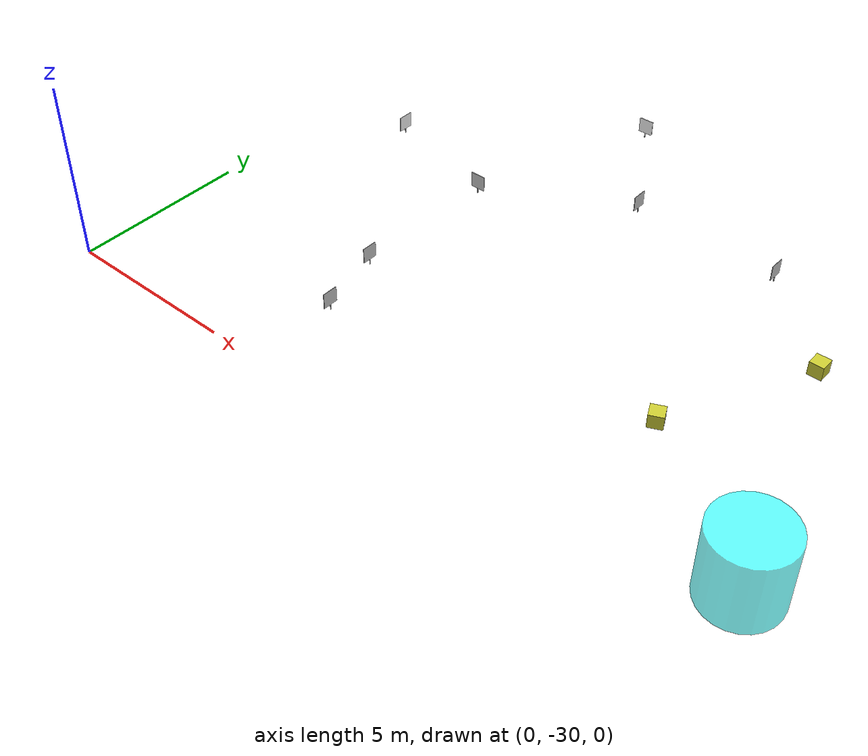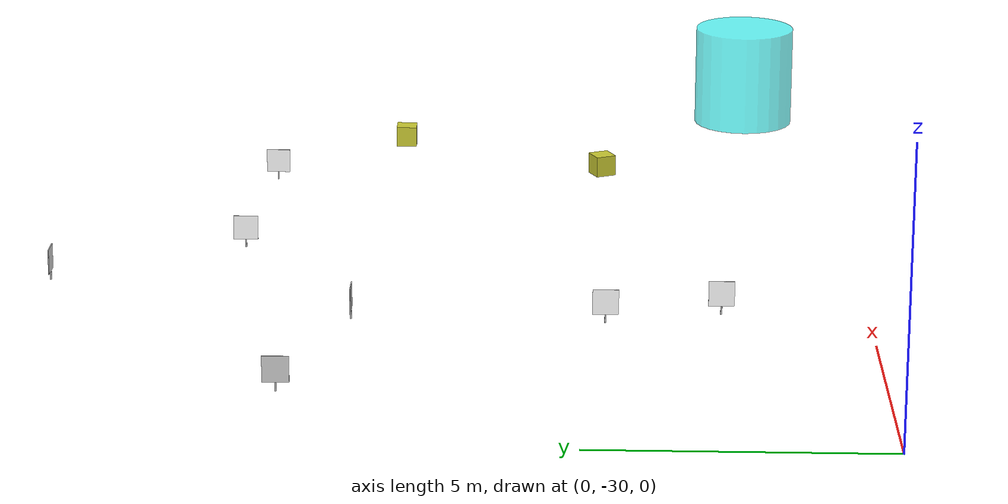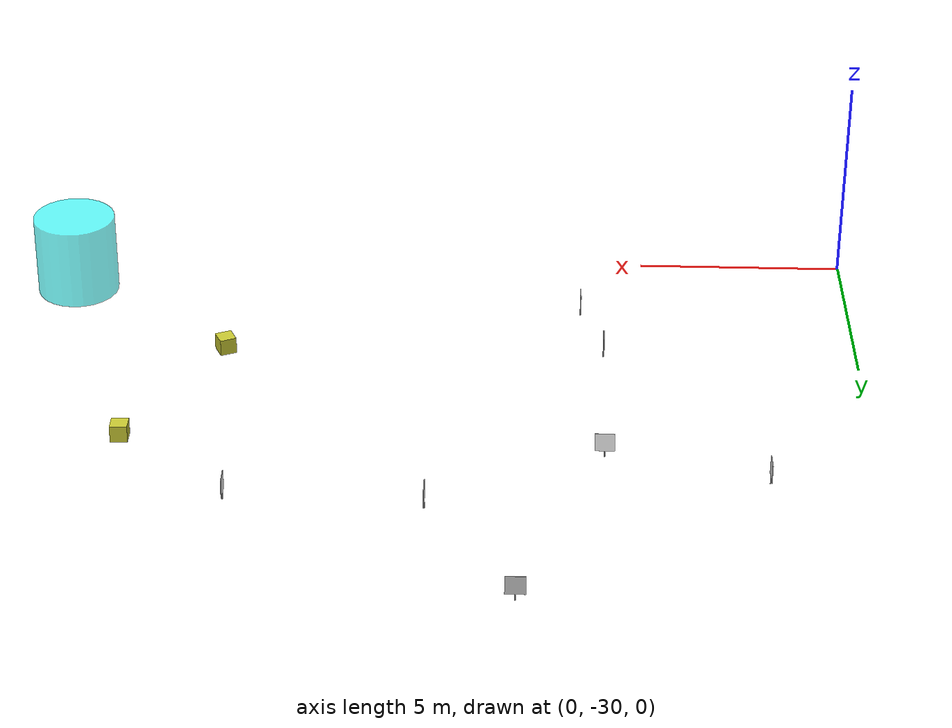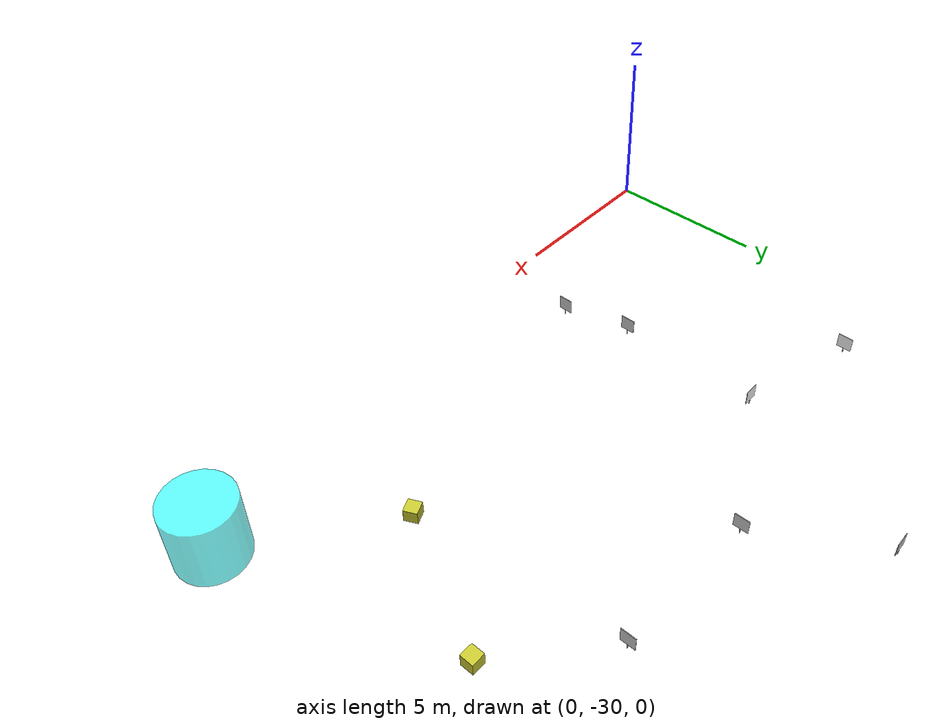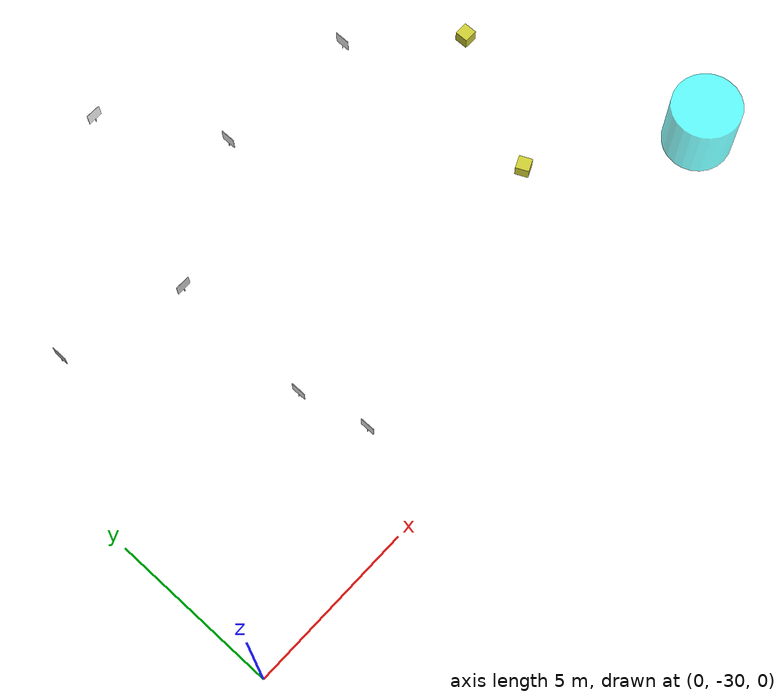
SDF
<sdf version="1.7">
 <world name="sim_world">
  <model name="aruco_3_v79">
   <static>true</static>
   <pose>17.117087575012107 -21.46088388597486 0.2 0 0 0.0</pose>
   <link name="link">
    <visual name="visual">
     <geometry><box><size>0.4 0.4 0.4</size></box></geometry>
     <material>
      <ambient>0.8 0.8 0.2 1</ambient>
      <diffuse>0.8 0.8 0.2 1</diffuse>
      <pbr>
       <metal>
        <albedo_map>/home/nemilai/ros2_ws/src/mini_r1_v1_description/worlds/generated/aruco_3.png</albedo_map>
       </metal>
      </pbr>
     </material>
    </visual>
    <collision name="collision"><geometry><box><size>0.4 0.4 0.4</size></box></geometry></collision>
   </link>
  </model>
  <model name="aruco_4_v80">
   <static>true</static>
   <pose>15.117840397118337 -25.435033826702337 0.2 0 0 0.4363323129985824</pose>
   <link name="link">
    <visual name="visual">
     <geometry><box><size>0.4 0.4 0.4</size></box></geometry>
     <material>
      <ambient>0.8 0.8 0.2 1</ambient>
      <diffuse>0.8 0.8 0.2 1</diffuse>
      <pbr>
       <metal>
        <albedo_map>/home/nemilai/ros2_ws/src/mini_r1_v1_description/worlds/generated/aruco_4.png</albedo_map>
       </metal>
      </pbr>
     </material>
    </visual>
    <collision name="collision"><geometry><box><size>0.4 0.4 0.4</size></box></geometry></collision>
   </link>
  </model>
  <model name="sign_12_rotate_180_clockwise_v85">
   <static>true</static>
   <pose>8.07224135133321 -15.52440315666892 0 0 0 4.71238898038469</pose>
   <link name="link">
    <visual name="pole">
     <pose>0 0 0.075 0 0 0</pose>
     <geometry><cylinder><radius>0.015</radius><length>0.15</length></cylinder></geometry>
     <material>
      <ambient>0.8 0.8 0.8 1</ambient>
      <diffuse>0.8 0.8 0.8 1</diffuse>
      <pbr>
       <metal>
        <albedo_map>file:///home/nemilai/ros2_ws/src/mini_r1_v1_description/worlds/wood_texture.jpg</albedo_map>
       </metal>
      </pbr>
     </material>
    </visual>
    <collision name="pole_col">
     <pose>0 0 0.075 0 0 0</pose>
     <geometry><cylinder><radius>0.015</radius><length>0.15</length></cylinder></geometry>
    </collision>
    <visual name="panel">
     <pose>0 0 0.375 0 0 0</pose>
     <geometry><box><size>0.015 0.45 0.45</size></box></geometry>
     <material>
      <ambient>0.8 0.8 0.8 1</ambient>
      <diffuse>0.8 0.8 0.8 1</diffuse>
      <pbr>
       <metal>
        <albedo_map>file:///home/nemilai/ros2_ws/src/mini_r1_v1_description/worlds/wood_texture.jpg</albedo_map>
       </metal>
      </pbr>
     </material>
    </visual>
    <visual name="sign_front">
     <pose>0.0085 0 0.375 0 0 0</pose>
     <geometry><box><size>0.001 0.45 0.45</size></box></geometry>
     <material>
      <ambient>1 1 1 1</ambient>
      <diffuse>1 1 1 1</diffuse>
      <pbr>
       <metal>
        <albedo_map>file:///home/nemilai/ros2_ws/src/mini_r1_v1_description/worlds/generated/sign_12_rotate_180_clockwise.png</albedo_map>
       </metal>
      </pbr>
     </material>
    </visual>
    <collision name="panel_col">
     <pose>0 0 0.375 0 0 0</pose>
     <geometry><box><size>0.015 0.45 0.45</size></box></geometry>
    </collision>
   </link>
  </model>
  <model name="sign_6_right_v88">
   <static>true</static>
   <pose>6.1146526232194525 -21.04196971312087 0 0 0 1.5707963267948966</pose>
   <link name="link">
    <visual name="pole">
     <pose>0 0 0.075 0 0 0</pose>
     <geometry><cylinder><radius>0.015</radius><length>0.15</length></cylinder></geometry>
     <material>
      <ambient>0.8 0.8 0.8 1</ambient>
      <diffuse>0.8 0.8 0.8 1</diffuse>
      <pbr>
       <metal>
        <albedo_map>file:///home/nemilai/ros2_ws/src/mini_r1_v1_description/worlds/wood_texture.jpg</albedo_map>
       </metal>
      </pbr>
     </material>
    </visual>
    <collision name="pole_col">
     <pose>0 0 0.075 0 0 0</pose>
     <geometry><cylinder><radius>0.015</radius><length>0.15</length></cylinder></geometry>
    </collision>
    <visual name="panel">
     <pose>0 0 0.375 0 0 0</pose>
     <geometry><box><size>0.015 0.45 0.45</size></box></geometry>
     <material>
      <ambient>0.8 0.8 0.8 1</ambient>
      <diffuse>0.8 0.8 0.8 1</diffuse>
      <pbr>
       <metal>
        <albedo_map>file:///home/nemilai/ros2_ws/src/mini_r1_v1_description/worlds/wood_texture.jpg</albedo_map>
       </metal>
      </pbr>
     </material>
    </visual>
    <visual name="sign_front">
     <pose>0.0085 0 0.375 0 0 0</pose>
     <geometry><box><size>0.001 0.45 0.45</size></box></geometry>
     <material>
      <ambient>1 1 1 1</ambient>
      <diffuse>1 1 1 1</diffuse>
      <pbr>
       <metal>
        <albedo_map>file:///home/nemilai/ros2_ws/src/mini_r1_v1_description/worlds/generated/sign_6_right.png</albedo_map>
       </metal>
      </pbr>
     </material>
    </visual>
    <collision name="panel_col">
     <pose>0 0 0.375 0 0 0</pose>
     <geometry><box><size>0.015 0.45 0.45</size></box></geometry>
    </collision>
   </link>
  </model>
  <model name="sign_5_right_v89">
   <static>true</static>
   <pose>2.4619564847487805 -20.058226512706934 0 0 0 0.0</pose>
   <link name="link">
    <visual name="pole">
     <pose>0 0 0.075 0 0 0</pose>
     <geometry><cylinder><radius>0.015</radius><length>0.15</length></cylinder></geometry>
     <material>
      <ambient>0.8 0.8 0.8 1</ambient>
      <diffuse>0.8 0.8 0.8 1</diffuse>
      <pbr>
       <metal>
        <albedo_map>file:///home/nemilai/ros2_ws/src/mini_r1_v1_description/worlds/wood_texture.jpg</albedo_map>
       </metal>
      </pbr>
     </material>
    </visual>
    <collision name="pole_col">
     <pose>0 0 0.075 0 0 0</pose>
     <geometry><cylinder><radius>0.015</radius><length>0.15</length></cylinder></geometry>
    </collision>
    <visual name="panel">
     <pose>0 0 0.375 0 0 0</pose>
     <geometry><box><size>0.015 0.45 0.45</size></box></geometry>
     <material>
      <ambient>0.8 0.8 0.8 1</ambient>
      <diffuse>0.8 0.8 0.8 1</diffuse>
      <pbr>
       <metal>
        <albedo_map>file:///home/nemilai/ros2_ws/src/mini_r1_v1_description/worlds/wood_texture.jpg</albedo_map>
       </metal>
      </pbr>
     </material>
    </visual>
    <visual name="sign_front">
     <pose>0.0085 0 0.375 0 0 0</pose>
     <geometry><box><size>0.001 0.45 0.45</size></box></geometry>
     <material>
      <ambient>1 1 1 1</ambient>
      <diffuse>1 1 1 1</diffuse>
      <pbr>
       <metal>
        <albedo_map>file:///home/nemilai/ros2_ws/src/mini_r1_v1_description/worlds/generated/sign_5_right.png</albedo_map>
       </metal>
      </pbr>
     </material>
    </visual>
    <collision name="panel_col">
     <pose>0 0 0.375 0 0 0</pose>
     <geometry><box><size>0.015 0.45 0.45</size></box></geometry>
    </collision>
   </link>
  </model>
  <model name="sign_7_forward_v90">
   <static>true</static>
   <pose>10.089684807754317 -18.83749056953392 0 0 0 3.141592653589793</pose>
   <link name="link">
    <visual name="pole">
     <pose>0 0 0.075 0 0 0</pose>
     <geometry><cylinder><radius>0.015</radius><length>0.15</length></cylinder></geometry>
     <material>
      <ambient>0.8 0.8 0.8 1</ambient>
      <diffuse>0.8 0.8 0.8 1</diffuse>
      <pbr>
       <metal>
        <albedo_map>file:///home/nemilai/ros2_ws/src/mini_r1_v1_description/worlds/wood_texture.jpg</albedo_map>
       </metal>
      </pbr>
     </material>
    </visual>
    <collision name="pole_col">
     <pose>0 0 0.075 0 0 0</pose>
     <geometry><cylinder><radius>0.015</radius><length>0.15</length></cylinder></geometry>
    </collision>
    <visual name="panel">
     <pose>0 0 0.375 0 0 0</pose>
     <geometry><box><size>0.015 0.45 0.45</size></box></geometry>
     <material>
      <ambient>0.8 0.8 0.8 1</ambient>
      <diffuse>0.8 0.8 0.8 1</diffuse>
      <pbr>
       <metal>
        <albedo_map>file:///home/nemilai/ros2_ws/src/mini_r1_v1_description/worlds/wood_texture.jpg</albedo_map>
       </metal>
      </pbr>
     </material>
    </visual>
    <visual name="sign_front">
     <pose>0.0085 0 0.375 0 0 0</pose>
     <geometry><box><size>0.001 0.45 0.45</size></box></geometry>
     <material>
      <ambient>1 1 1 1</ambient>
      <diffuse>1 1 1 1</diffuse>
      <pbr>
       <metal>
        <albedo_map>file:///home/nemilai/ros2_ws/src/mini_r1_v1_description/worlds/generated/sign_7_forward.png</albedo_map>
       </metal>
      </pbr>
     </material>
    </visual>
    <collision name="panel_col">
     <pose>0 0 0.375 0 0 0</pose>
     <geometry><box><size>0.015 0.45 0.45</size></box></geometry>
    </collision>
   </link>
  </model>
  <model name="sign_8_right_v91">
   <static>true</static>
   <pose>14.515640073279897 -19.052303151572936 0 0 0 3.141592653589793</pose>
   <link name="link">
    <visual name="pole">
     <pose>0 0 0.075 0 0 0</pose>
     <geometry><cylinder><radius>0.015</radius><length>0.15</length></cylinder></geometry>
     <material>
      <ambient>0.8 0.8 0.8 1</ambient>
      <diffuse>0.8 0.8 0.8 1</diffuse>
      <pbr>
       <metal>
        <albedo_map>file:///home/nemilai/ros2_ws/src/mini_r1_v1_description/worlds/wood_texture.jpg</albedo_map>
       </metal>
      </pbr>
     </material>
    </visual>
    <collision name="pole_col">
     <pose>0 0 0.075 0 0 0</pose>
     <geometry><cylinder><radius>0.015</radius><length>0.15</length></cylinder></geometry>
    </collision>
    <visual name="panel">
     <pose>0 0 0.375 0 0 0</pose>
     <geometry><box><size>0.015 0.45 0.45</size></box></geometry>
     <material>
      <ambient>0.8 0.8 0.8 1</ambient>
      <diffuse>0.8 0.8 0.8 1</diffuse>
      <pbr>
       <metal>
        <albedo_map>file:///home/nemilai/ros2_ws/src/mini_r1_v1_description/worlds/wood_texture.jpg</albedo_map>
       </metal>
      </pbr>
     </material>
    </visual>
    <visual name="sign_front">
     <pose>0.0085 0 0.375 0 0 0</pose>
     <geometry><box><size>0.001 0.45 0.45</size></box></geometry>
     <material>
      <ambient>1 1 1 1</ambient>
      <diffuse>1 1 1 1</diffuse>
      <pbr>
       <metal>
        <albedo_map>file:///home/nemilai/ros2_ws/src/mini_r1_v1_description/worlds/generated/sign_8_right.png</albedo_map>
       </metal>
      </pbr>
     </material>
    </visual>
    <collision name="panel_col">
     <pose>0 0 0.375 0 0 0</pose>
     <geometry><box><size>0.015 0.45 0.45</size></box></geometry>
    </collision>
   </link>
  </model>
  <model name="sign_12_rotate_180_clockwise_v92">
   <static>true</static>
   <pose>6.048801394033776 -25.437308361518255 0 0 0 3.141592653589793</pose>
   <link name="link">
    <visual name="pole">
     <pose>0 0 0.075 0 0 0</pose>
     <geometry><cylinder><radius>0.015</radius><length>0.15</length></cylinder></geometry>
     <material>
      <ambient>0.8 0.8 0.8 1</ambient>
      <diffuse>0.8 0.8 0.8 1</diffuse>
      <pbr>
       <metal>
        <albedo_map>file:///home/nemilai/ros2_ws/src/mini_r1_v1_description/worlds/wood_texture.jpg</albedo_map>
       </metal>
      </pbr>
     </material>
    </visual>
    <collision name="pole_col">
     <pose>0 0 0.075 0 0 0</pose>
     <geometry><cylinder><radius>0.015</radius><length>0.15</length></cylinder></geometry>
    </collision>
    <visual name="panel">
     <pose>0 0 0.375 0 0 0</pose>
     <geometry><box><size>0.015 0.45 0.45</size></box></geometry>
     <material>
      <ambient>0.8 0.8 0.8 1</ambient>
      <diffuse>0.8 0.8 0.8 1</diffuse>
      <pbr>
       <metal>
        <albedo_map>file:///home/nemilai/ros2_ws/src/mini_r1_v1_description/worlds/wood_texture.jpg</albedo_map>
       </metal>
      </pbr>
     </material>
    </visual>
    <visual name="sign_front">
     <pose>0.0085 0 0.375 0 0 0</pose>
     <geometry><box><size>0.001 0.45 0.45</size></box></geometry>
     <material>
      <ambient>1 1 1 1</ambient>
      <diffuse>1 1 1 1</diffuse>
      <pbr>
       <metal>
        <albedo_map>file:///home/nemilai/ros2_ws/src/mini_r1_v1_description/worlds/generated/sign_12_rotate_180_clockwise.png</albedo_map>
       </metal>
      </pbr>
     </material>
    </visual>
    <collision name="panel_col">
     <pose>0 0 0.375 0 0 0</pose>
     <geometry><box><size>0.015 0.45 0.45</size></box></geometry>
    </collision>
   </link>
  </model>
  <model name="sign_9_forward_v93">
   <static>true</static>
   <pose>6.5738605249639 -27.449816766641796 0 0 0 3.141592653589793</pose>
   <link name="link">
    <visual name="pole">
     <pose>0 0 0.075 0 0 0</pose>
     <geometry><cylinder><radius>0.015</radius><length>0.15</length></cylinder></geometry>
     <material>
      <ambient>0.8 0.8 0.8 1</ambient>
      <diffuse>0.8 0.8 0.8 1</diffuse>
      <pbr>
       <metal>
        <albedo_map>file:///home/nemilai/ros2_ws/src/mini_r1_v1_description/worlds/wood_texture.jpg</albedo_map>
       </metal>
      </pbr>
     </material>
    </visual>
    <collision name="pole_col">
     <pose>0 0 0.075 0 0 0</pose>
     <geometry><cylinder><radius>0.015</radius><length>0.15</length></cylinder></geometry>
    </collision>
    <visual name="panel">
     <pose>0 0 0.375 0 0 0</pose>
     <geometry><box><size>0.015 0.45 0.45</size></box></geometry>
     <material>
      <ambient>0.8 0.8 0.8 1</ambient>
      <diffuse>0.8 0.8 0.8 1</diffuse>
      <pbr>
       <metal>
        <albedo_map>file:///home/nemilai/ros2_ws/src/mini_r1_v1_description/worlds/wood_texture.jpg</albedo_map>
       </metal>
      </pbr>
     </material>
    </visual>
    <visual name="sign_front">
     <pose>0.0085 0 0.375 0 0 0</pose>
     <geometry><box><size>0.001 0.45 0.45</size></box></geometry>
     <material>
      <ambient>1 1 1 1</ambient>
      <diffuse>1 1 1 1</diffuse>
      <pbr>
       <metal>
        <albedo_map>file:///home/nemilai/ros2_ws/src/mini_r1_v1_description/worlds/generated/sign_9_forward.png</albedo_map>
       </metal>
      </pbr>
     </material>
    </visual>
    <collision name="panel_col">
     <pose>0 0 0.375 0 0 0</pose>
     <geometry><box><size>0.015 0.45 0.45</size></box></geometry>
    </collision>
   </link>
  </model>
  <model name="zone_goal">
   <static>true</static>
   <pose>19.138349492912056 -28.40637582974065 1.0 0 0 0</pose>
   <link name="link">
    <visual name="cylinder">
     <visibility_flags>1</visibility_flags>
     <transparency>0.4</transparency>
     <geometry><cylinder><radius>1.0</radius><length>2.0</length></cylinder></geometry>
     <material><ambient>0.0 1.0 1.0 1.0</ambient><diffuse>0.0 1.0 1.0 1.0</diffuse></material>
    </visual>
   </link>
  </model>
 </world>
</sdf>
